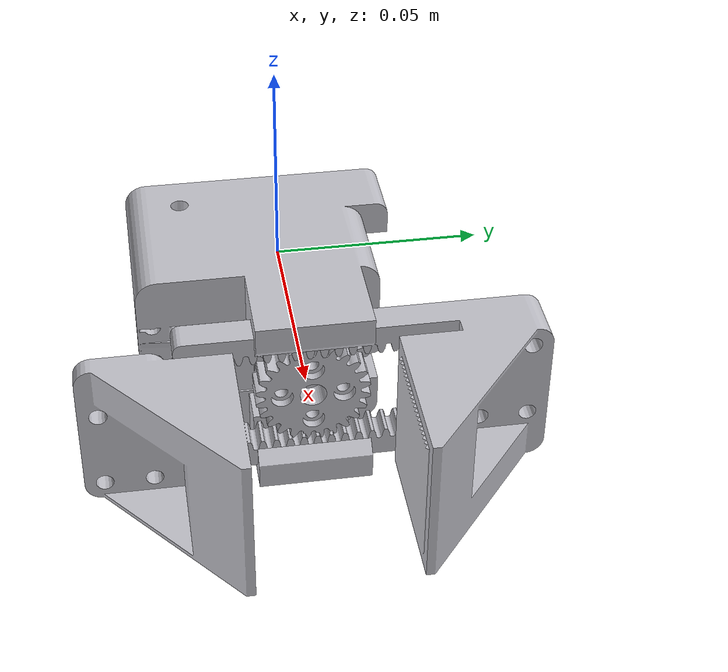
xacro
<?xml version="1.0" ?>
<robot name="two_finger_gripper" xmlns:xacro="http://www.ros.org/wiki/xacro">

<xacro:include filename="$(find two_finger_gripper_description)/urdf/two_finger_gripper.trans" />
<xacro:include filename="$(find two_finger_gripper_description)/urdf/two_finger_gripper.gazebo" />
<link name="gripper_base_link">
  <inertial>
    <origin xyz="0.023843975149766813 -0.007551602066560885 -1.7803166319307262e-07" rpy="0 0 0"/>
    <mass value="0.7371676511848216"/>
    <inertia ixx="0.000313" iyy="0.000272" izz="0.000299" ixy="-1.3e-05" iyz="0.0" ixz="0.0"/>
  </inertial>
  <visual>
    <origin xyz="0 0 0" rpy="0 0 0"/>
    <geometry>
      <mesh filename="package://two_finger_gripper_description/meshes/gripper_base_link.stl" scale="0.001 0.001 0.001"/>
    </geometry>
    <material name="silver"/>
  </visual>
  <collision>
    <origin xyz="0 0 0" rpy="0 0 0"/>
    <geometry>
      <mesh filename="package://two_finger_gripper_description/meshes/gripper_base_link.stl" scale="0.001 0.001 0.001"/>
    </geometry>
  </collision>
</link>

<link name="pinion_1">
  <inertial>
    <origin xyz="0.0034043394457755963 1.3778876043618604e-12 -1.2631614722542942e-12" rpy="0 0 0"/>
    <mass value="0.020624177027043226"/>
    <inertia ixx="2e-06" iyy="1e-06" izz="1e-06" ixy="-0.0" iyz="-0.0" ixz="0.0"/>
  </inertial>
  <visual>
    <origin xyz="-0.0485 -0.001 0.0" rpy="0 0 0"/>
    <geometry>
      <mesh filename="package://two_finger_gripper_description/meshes/pinion_1.stl" scale="0.001 0.001 0.001"/>
    </geometry>
    <material name="silver"/>
  </visual>
  <collision>
    <origin xyz="-0.0485 -0.001 0.0" rpy="0 0 0"/>
    <geometry>
      <mesh filename="package://two_finger_gripper_description/meshes/pinion_1.stl" scale="0.001 0.001 0.001"/>
    </geometry>
  </collision>
</link>

<link name="gripper_right_1">
  <inertial>
    <origin xyz="0.010859809536370418 -0.0037061649756109875 -0.016631094134670964" rpy="0 0 0"/>
    <mass value="0.19983948074258262"/>
    <inertia ixx="6.3e-05" iyy="5.4e-05" izz="6.8e-05" ixy="6e-06" iyz="8e-06" ixz="7e-06"/>
  </inertial>
  <visual>
    <origin xyz="-0.0567 -0.014 -0.0182" rpy="0 0 0"/>
    <geometry>
      <mesh filename="package://two_finger_gripper_description/meshes/gripper_right_1.stl" scale="0.001 0.001 0.001"/>
    </geometry>
    <material name="silver"/>
  </visual>
  <collision>
    <origin xyz="-0.0567 -0.014 -0.0182" rpy="0 0 0"/>
    <geometry>
      <mesh filename="package://two_finger_gripper_description/meshes/gripper_right_1.stl" scale="0.001 0.001 0.001"/>
    </geometry>
  </collision>
</link>

<link name="gripper_left_1">
  <inertial>
    <origin xyz="0.010257810630306105 0.003203941855784714 0.016553712338734785" rpy="0 0 0"/>
    <mass value="0.18914730605530125"/>
    <inertia ixx="6.1e-05" iyy="5.1e-05" izz="6.6e-05" ixy="-4e-06" iyz="8e-06" ixz="-6e-06"/>
  </inertial>
  <visual>
    <origin xyz="-0.0567 0.012 0.0182" rpy="0 0 0"/>
    <geometry>
      <mesh filename="package://two_finger_gripper_description/meshes/gripper_left_1.stl" scale="0.001 0.001 0.001"/>
    </geometry>
    <material name="silver"/>
  </visual>
  <collision>
    <origin xyz="-0.0567 0.012 0.0182" rpy="0 0 0"/>
    <geometry>
      <mesh filename="package://two_finger_gripper_description/meshes/gripper_left_1.stl" scale="0.001 0.001 0.001"/>
    </geometry>
  </collision>
</link>

<joint name="gripper_joint" type="revolute">
  <origin xyz="0.0485 0.001 0.0" rpy="0 0 0"/>
  <parent link="gripper_base_link"/>
  <child link="pinion_1"/>
  <axis xyz="1.0 -0.0 -0.0"/>
  <limit upper="2.96706" lower="0.0" effort="100" velocity="100"/>
</joint>

<joint name="right_gripper_joint" type="prismatic">
  <origin xyz="0.0567 0.014 0.0182" rpy="0 0 0"/>
  <parent link="gripper_base_link"/>
  <child link="gripper_right_1"/>
  <axis xyz="0.0 1.0 0.0"/>
  <mimic joint="gripper_joint" multiplier="-0.011796189" offset="0.035"/>
  <limit upper="0.035" lower="0.001" effort="100" velocity="100"/>
</joint>

<joint name="left_gripper_joint" type="prismatic">
  <origin xyz="0.0567 -0.012 -0.0182" rpy="0 0 0"/>
  <parent link="gripper_base_link"/>
  <child link="gripper_left_1"/>
  <axis xyz="0.0 1.0 0.0"/>
  <mimic joint="gripper_joint" multiplier="0.011796189" offset="-0.035"/>
  <limit upper="-0.001" lower="-0.035" effort="100" velocity="100"/>
</joint>

</robot>

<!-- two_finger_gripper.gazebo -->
<robot name="two_finger_gripper" xmlns:xacro="http://www.ros.org/wiki/xacro" >

<xacro:property name="body_color" value="Gazebo/Silver" />

<gazebo>
  <plugin name="control" filename="libgazebo_ros_control.so"/>
</gazebo>
<gazebo reference="gripper_base_link">
  <material>${body_color}</material>
  <mu1>0.2</mu1>
  <mu2>0.2</mu2>
  <selfCollide>true</selfCollide>
  <gravity>true</gravity>
</gazebo>

<gazebo reference="pinion_1">
  <material>${body_color}</material>
  <mu1>0.2</mu1>
  <mu2>0.2</mu2>
  <selfCollide>true</selfCollide>
</gazebo>

<gazebo reference="gripper_right_1">
  <material>${body_color}</material>
  <mu1>0.2</mu1>
  <mu2>0.2</mu2>
  <selfCollide>true</selfCollide>
</gazebo>

<gazebo reference="gripper_left_1">
  <material>${body_color}</material>
  <mu1>0.2</mu1>
  <mu2>0.2</mu2>
  <selfCollide>true</selfCollide>
</gazebo>

</robot>
